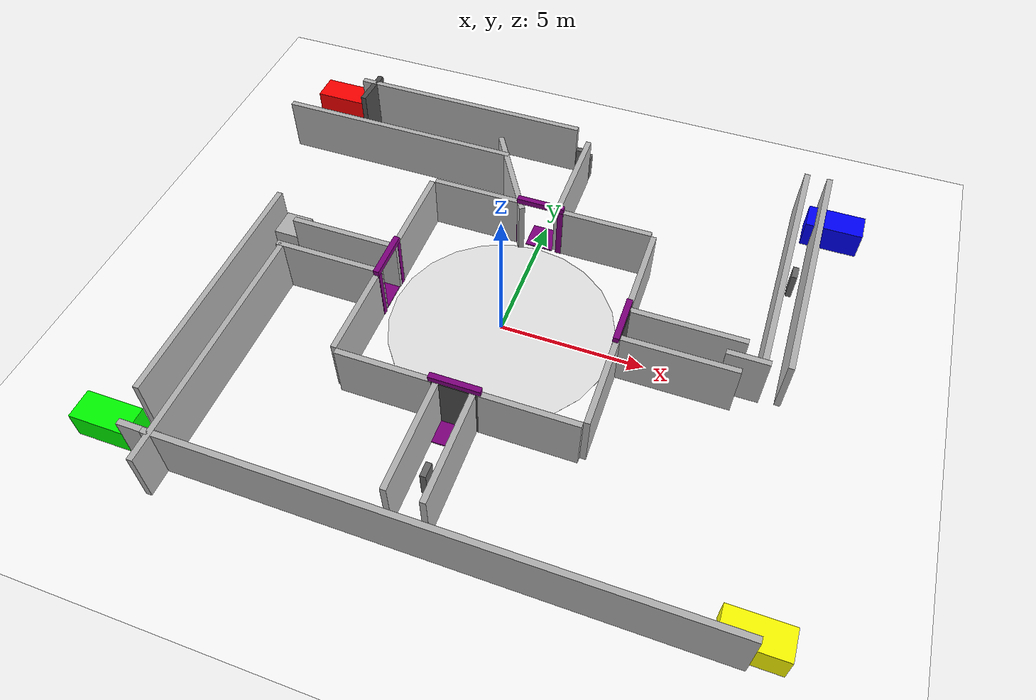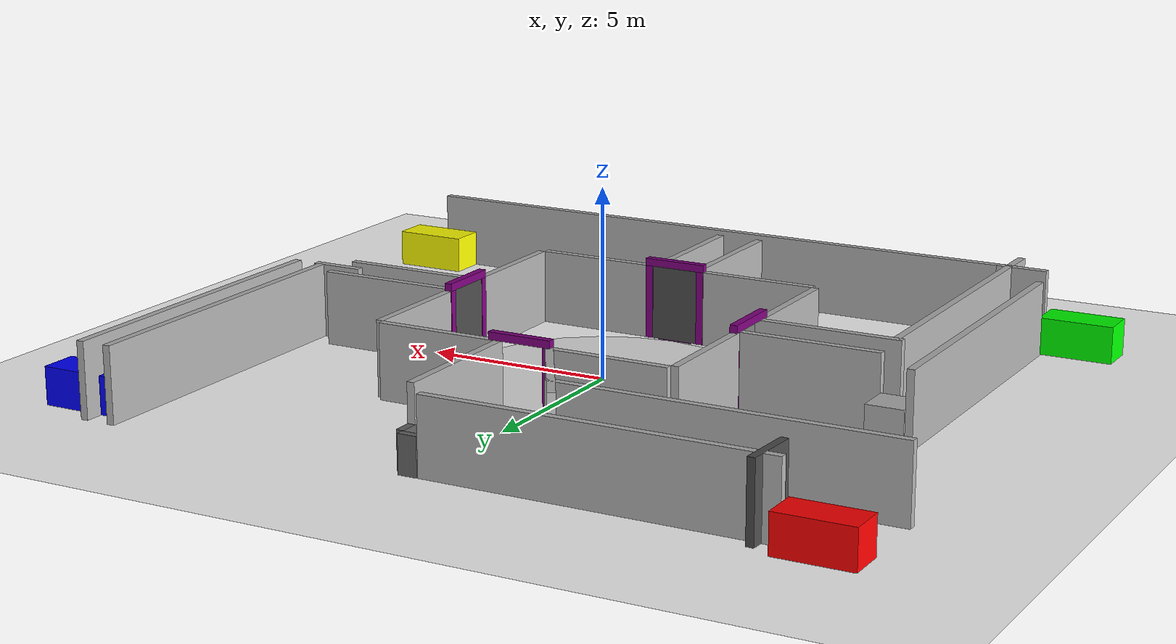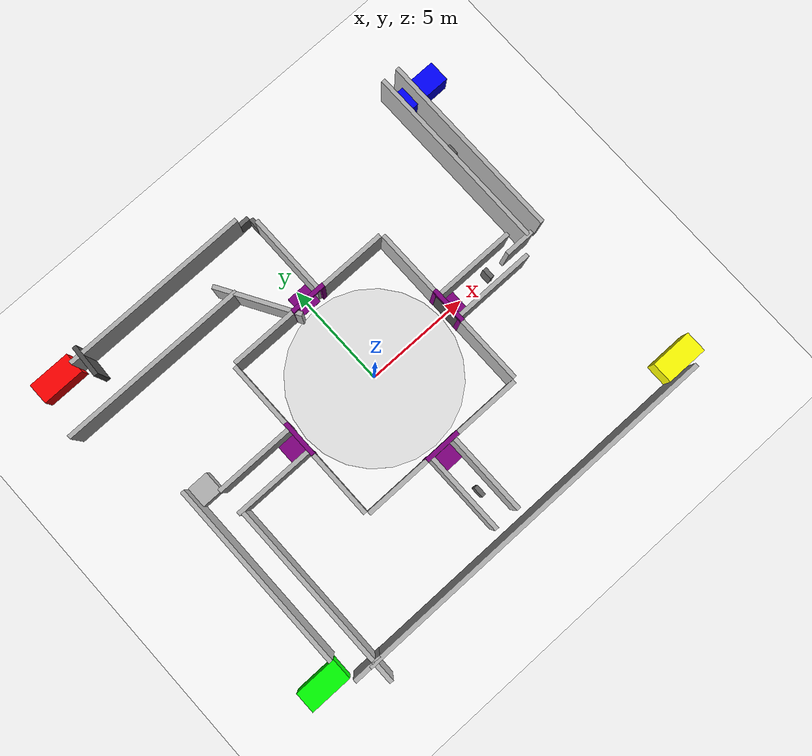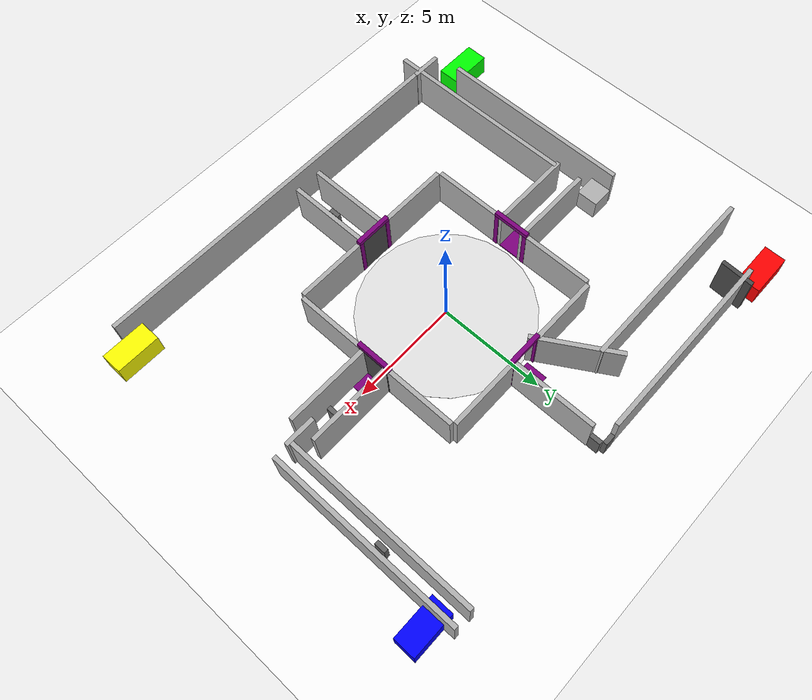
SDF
<sdf version="1.7">
 <world name="laberinto_v0_world">
  <model name="white_floor">
   <static>true</static>
   <link name="floor_link">
    <collision name="collision">
     <geometry><plane><normal>0 0 1</normal><size>40 40</size></plane></geometry>
    </collision>
    <visual name="visual">
     <geometry><plane><normal>0 0 1</normal><size>40 40</size></plane></geometry>
     <material>
      <ambient>1 1 1 1</ambient>
      <diffuse>1 1 1 1</diffuse>
      <specular>0.100000001 0.100000001 0.100000001 1</specular>
     </material>
    </visual>
    <inertial>
     <mass>1</mass>
     <inertia><ixx>1</ixx><ixy>0</ixy><ixz>0</ixz><iyy>1</iyy><iyz>0</iyz><izz>1</izz></inertia>
    </inertial>
   </link>
  </model>
  <model name="central_wall_north_left">
   <static>true</static>
   <pose>-2.375 4.0999999999999996 1 0 0 0</pose>
   <link name="link">
    <collision name="collision">
     <geometry><box><size>3.25 0.20000000000000001 2</size></box></geometry>
    </collision>
    <visual name="visual">
     <geometry><box><size>3.25 0.20000000000000001 2</size></box></geometry>
     <material>
      <ambient>0.699999988 0.699999988 0.699999988 1</ambient>
      <diffuse>0.699999988 0.699999988 0.699999988 1</diffuse>
     </material>
    </visual>
    <inertial>
     <mass>1</mass>
     <inertia><ixx>1</ixx><ixy>0</ixy><ixz>0</ixz><iyy>1</iyy><iyz>0</iyz><izz>1</izz></inertia>
    </inertial>
   </link>
  </model>
  <model name="central_wall_north_right">
   <static>true</static>
   <pose>2.375 4.0999999999999996 1 0 0 0</pose>
   <link name="link">
    <collision name="collision">
     <geometry><box><size>3.25 0.20000000000000001 2</size></box></geometry>
    </collision>
    <visual name="visual">
     <geometry><box><size>3.25 0.20000000000000001 2</size></box></geometry>
     <material>
      <ambient>0.699999988 0.699999988 0.699999988 1</ambient>
      <diffuse>0.699999988 0.699999988 0.699999988 1</diffuse>
     </material>
    </visual>
    <inertial>
     <mass>1</mass>
     <inertia><ixx>1</ixx><ixy>0</ixy><ixz>0</ixz><iyy>1</iyy><iyz>0</iyz><izz>1</izz></inertia>
    </inertial>
   </link>
  </model>
  <model name="central_wall_south_left">
   <static>true</static>
   <pose>-2.375 -4.0999999999999996 1 0 0 0</pose>
   <link name="link">
    <collision name="collision">
     <geometry><box><size>3.25 0.20000000000000001 2</size></box></geometry>
    </collision>
    <visual name="visual">
     <geometry><box><size>3.25 0.20000000000000001 2</size></box></geometry>
     <material>
      <ambient>0.699999988 0.699999988 0.699999988 1</ambient>
      <diffuse>0.699999988 0.699999988 0.699999988 1</diffuse>
     </material>
    </visual>
    <inertial>
     <mass>1</mass>
     <inertia><ixx>1</ixx><ixy>0</ixy><ixz>0</ixz><iyy>1</iyy><iyz>0</iyz><izz>1</izz></inertia>
    </inertial>
   </link>
  </model>
  <model name="central_wall_south_right">
   <static>true</static>
   <pose>2.375 -4.0999999999999996 1 0 0 0</pose>
   <link name="link">
    <collision name="collision">
     <geometry><box><size>3.25 0.20000000000000001 2</size></box></geometry>
    </collision>
    <visual name="visual">
     <geometry><box><size>3.25 0.20000000000000001 2</size></box></geometry>
     <material>
      <ambient>0.699999988 0.699999988 0.699999988 1</ambient>
      <diffuse>0.699999988 0.699999988 0.699999988 1</diffuse>
     </material>
    </visual>
    <inertial>
     <mass>1</mass>
     <inertia><ixx>1</ixx><ixy>0</ixy><ixz>0</ixz><iyy>1</iyy><iyz>0</iyz><izz>1</izz></inertia>
    </inertial>
   </link>
  </model>
  <model name="central_wall_east_bottom">
   <static>true</static>
   <pose>4.0999999999999996 -2.375 1 0 0 0</pose>
   <link name="link">
    <collision name="collision">
     <geometry><box><size>0.20000000000000001 3.25 2</size></box></geometry>
    </collision>
    <visual name="visual">
     <geometry><box><size>0.20000000000000001 3.25 2</size></box></geometry>
     <material>
      <ambient>0.699999988 0.699999988 0.699999988 1</ambient>
      <diffuse>0.699999988 0.699999988 0.699999988 1</diffuse>
     </material>
    </visual>
    <inertial>
     <mass>1</mass>
     <inertia><ixx>1</ixx><ixy>0</ixy><ixz>0</ixz><iyy>1</iyy><iyz>0</iyz><izz>1</izz></inertia>
    </inertial>
   </link>
  </model>
  <model name="central_wall_east_top">
   <static>true</static>
   <pose>4.0999999999999996 2.375 1 0 0 0</pose>
   <link name="link">
    <collision name="collision">
     <geometry><box><size>0.20000000000000001 3.25 2</size></box></geometry>
    </collision>
    <visual name="visual">
     <geometry><box><size>0.20000000000000001 3.25 2</size></box></geometry>
     <material>
      <ambient>0.699999988 0.699999988 0.699999988 1</ambient>
      <diffuse>0.699999988 0.699999988 0.699999988 1</diffuse>
     </material>
    </visual>
    <inertial>
     <mass>1</mass>
     <inertia><ixx>1</ixx><ixy>0</ixy><ixz>0</ixz><iyy>1</iyy><iyz>0</iyz><izz>1</izz></inertia>
    </inertial>
   </link>
  </model>
  <model name="central_wall_west_bottom">
   <static>true</static>
   <pose>-4.0999999999999996 -2.375 1 0 0 0</pose>
   <link name="link">
    <collision name="collision">
     <geometry><box><size>0.20000000000000001 3.25 2</size></box></geometry>
    </collision>
    <visual name="visual">
     <geometry><box><size>0.20000000000000001 3.25 2</size></box></geometry>
     <material>
      <ambient>0.699999988 0.699999988 0.699999988 1</ambient>
      <diffuse>0.699999988 0.699999988 0.699999988 1</diffuse>
     </material>
    </visual>
    <inertial>
     <mass>1</mass>
     <inertia><ixx>1</ixx><ixy>0</ixy><ixz>0</ixz><iyy>1</iyy><iyz>0</iyz><izz>1</izz></inertia>
    </inertial>
   </link>
  </model>
  <model name="central_wall_west_top">
   <static>true</static>
   <pose>-4.0999999999999996 2.375 1 0 0 0</pose>
   <link name="link">
    <collision name="collision">
     <geometry><box><size>0.20000000000000001 3.25 2</size></box></geometry>
    </collision>
    <visual name="visual">
     <geometry><box><size>0.20000000000000001 3.25 2</size></box></geometry>
     <material>
      <ambient>0.699999988 0.699999988 0.699999988 1</ambient>
      <diffuse>0.699999988 0.699999988 0.699999988 1</diffuse>
     </material>
    </visual>
    <inertial>
     <mass>1</mass>
     <inertia><ixx>1</ixx><ixy>0</ixy><ixz>0</ixz><iyy>1</iyy><iyz>0</iyz><izz>1</izz></inertia>
    </inertial>
   </link>
  </model>
  <model name="door_north">
   <static>true</static>
   <pose>-8.4864425659179688 8.2776279449462891 1 0 0 3.0887099978927126</pose>
   <link name="link">
    <collision name="collision"><geometry><box><size>0.20000000000000001 1.5 2</size></box></geometry></collision>
    <visual name="visual">
     <geometry><box><size>0.20000000000000001 1.5 2</size></box></geometry>
     <material>
      <ambient>0.300000012 0.300000012 0.300000012 1</ambient>
      <diffuse>0.300000012 0.300000012 0.300000012 1</diffuse>
     </material>
    </visual>
    <inertial>
     <mass>1</mass>
     <inertia><ixx>1</ixx><ixy>0</ixy><ixz>0</ixz><iyy>1</iyy><iyz>0</iyz><izz>1</izz></inertia>
    </inertial>
   </link>
  </model>
  <model name="door_south">
   <static>true</static>
   <pose>0 -4.0999999046325684 1 0 0 1.5739049109720806</pose>
   <link name="link">
    <collision name="collision"><geometry><box><size>0.20000000000000001 1.5 2</size></box></geometry></collision>
    <visual name="visual">
     <geometry><box><size>0.20000000000000001 1.5 2</size></box></geometry>
     <material>
      <ambient>0.300000012 0.300000012 0.300000012 1</ambient>
      <diffuse>0.300000012 0.300000012 0.300000012 1</diffuse>
     </material>
    </visual>
    <inertial>
     <mass>1</mass>
     <inertia><ixx>1</ixx><ixy>0</ixy><ixz>0</ixz><iyy>1</iyy><iyz>0</iyz><izz>1</izz></inertia>
    </inertial>
   </link>
  </model>
  <model name="door_east">
   <static>true</static>
   <pose>4.0999999046325684 0 1 0 0 -0.011448291346638816</pose>
   <link name="link">
    <collision name="collision"><geometry><box><size>0.20000000000000001 1.5 2</size></box></geometry></collision>
    <visual name="visual">
     <geometry><box><size>0.20000000000000001 1.5 2</size></box></geometry>
     <material>
      <ambient>0.300000012 0.300000012 0.300000012 1</ambient>
      <diffuse>0.300000012 0.300000012 0.300000012 1</diffuse>
     </material>
    </visual>
    <inertial>
     <mass>1</mass>
     <inertia><ixx>1</ixx><ixy>0</ixy><ixz>0</ixz><iyy>1</iyy><iyz>0</iyz><izz>1</izz></inertia>
    </inertial>
   </link>
  </model>
  <model name="central_room_floor_visual">
   <static>true</static>
   <pose>0 0 0.01 0 0 0</pose>
   <link name="link">
    <visual name="visual">
     <geometry><cylinder><radius>3.8999999999999999</radius><length>0.01</length></cylinder></geometry>
     <material>
      <ambient>0.899999976 0.899999976 0.899999976 1</ambient>
      <diffuse>0.899999976 0.899999976 0.899999976 1</diffuse>
     </material>
    </visual>
    <inertial>
     <mass>1</mass>
     <inertia><ixx>1</ixx><ixy>0</ixy><ixz>0</ixz><iyy>1</iyy><iyz>0</iyz><izz>1</izz></inertia>
    </inertial>
   </link>
  </model>
  <model name="purple_carpet_north">
   <static>true</static>
   <pose>0 4.5239000000000003 -0.0097000000000000003 0 0 0</pose>
   <link name="link">
    <collision name="collision"><geometry><box><size>1 1 0.050000000000000003</size></box></geometry></collision>
    <visual name="visual">
     <geometry><box><size>1 1 0.050000000000000003</size></box></geometry>
     <material><ambient>0.5 0 0.5 1</ambient><diffuse>0.5 0 0.5 1</diffuse></material>
    </visual>
    <inertial>
     <mass>1</mass>
     <inertia><ixx>1</ixx><ixy>0</ixy><ixz>0</ixz><iyy>1</iyy><iyz>0</iyz><izz>1</izz></inertia>
    </inertial>
   </link>
  </model>
  <model name="purple_carpet_south">
   <static>true</static>
   <pose>0 -4.5239000000000003 -0.0097000000000000003 0 0 0</pose>
   <link name="link">
    <collision name="collision"><geometry><box><size>1 1 0.050000000000000003</size></box></geometry></collision>
    <visual name="visual">
     <geometry><box><size>1 1 0.050000000000000003</size></box></geometry>
     <material><ambient>0.5 0 0.5 1</ambient><diffuse>0.5 0 0.5 1</diffuse></material>
    </visual>
    <inertial>
     <mass>1</mass>
     <inertia><ixx>1</ixx><ixy>0</ixy><ixz>0</ixz><iyy>1</iyy><iyz>0</iyz><izz>1</izz></inertia>
    </inertial>
   </link>
  </model>
  <model name="purple_carpet_east">
   <static>true</static>
   <pose>4.5239000000000003 0 -0.0097000000000000003 0 0 0</pose>
   <link name="link">
    <collision name="collision"><geometry><box><size>1 1 0.050000000000000003</size></box></geometry></collision>
    <visual name="visual">
     <geometry><box><size>1 1 0.050000000000000003</size></box></geometry>
     <material><ambient>0.5 0 0.5 1</ambient><diffuse>0.5 0 0.5 1</diffuse></material>
    </visual>
    <inertial>
     <mass>1</mass>
     <inertia><ixx>1</ixx><ixy>0</ixy><ixz>0</ixz><iyy>1</iyy><iyz>0</iyz><izz>1</izz></inertia>
    </inertial>
   </link>
  </model>
  <model name="purple_carpet_west">
   <static>true</static>
   <pose>-4.5239000000000003 0 -0.0097000000000000003 0 0 0</pose>
   <link name="link">
    <collision name="collision"><geometry><box><size>1 1 0.050000000000000003</size></box></geometry></collision>
    <visual name="visual">
     <geometry><box><size>1 1 0.050000000000000003</size></box></geometry>
     <material><ambient>0.5 0 0.5 1</ambient><diffuse>0.5 0 0.5 1</diffuse></material>
    </visual>
    <inertial>
     <mass>1</mass>
     <inertia><ixx>1</ixx><ixy>0</ixy><ixz>0</ixz><iyy>1</iyy><iyz>0</iyz><izz>1</izz></inertia>
    </inertial>
   </link>
  </model>
  <model name="roman_arch_north">
   <static>true</static>
   <pose>0 4.0841000000000003 0 0 0 0</pose>
   <link name="pillar_left">
    <pose>-0.75 0 1 0 0 0</pose>
    <collision name="collision">
     <geometry><box><size>0.20000000000000001 0.20000000000000001 2</size></box></geometry>
    </collision>
    <visual name="visual">
     <geometry><box><size>0.20000000000000001 0.20000000000000001 2</size></box></geometry>
     <material><ambient>0.5 0 0.5 1</ambient><diffuse>0.5 0 0.5 1</diffuse></material>
    </visual>
    <inertial>
     <mass>1</mass>
     <inertia><ixx>1</ixx><ixy>0</ixy><ixz>0</ixz><iyy>1</iyy><iyz>0</iyz><izz>1</izz></inertia>
    </inertial>
   </link>
   <link name="pillar_right">
    <pose>0.75 0 1 0 0 0</pose>
    <collision name="collision">
     <geometry><box><size>0.20000000000000001 0.20000000000000001 2</size></box></geometry>
    </collision>
    <visual name="visual">
     <geometry><box><size>0.20000000000000001 0.20000000000000001 2</size></box></geometry>
     <material><ambient>0.5 0 0.5 1</ambient><diffuse>0.5 0 0.5 1</diffuse></material>
    </visual>
    <inertial>
     <mass>1</mass>
     <inertia><ixx>1</ixx><ixy>0</ixy><ixz>0</ixz><iyy>1</iyy><iyz>0</iyz><izz>1</izz></inertia>
    </inertial>
   </link>
   <link name="arch_top">
    <pose>0 0 2.1000000000000001 0 0 0</pose>
    <collision name="collision">
     <geometry><box><size>1.7 0.20000000000000001 0.20000000000000001</size></box></geometry>
    </collision>
    <visual name="visual">
     <geometry><box><size>1.7 0.20000000000000001 0.20000000000000001</size></box></geometry>
     <material><ambient>0.5 0 0.5 1</ambient><diffuse>0.5 0 0.5 1</diffuse></material>
    </visual>
    <inertial>
     <mass>1</mass>
     <inertia><ixx>1</ixx><ixy>0</ixy><ixz>0</ixz><iyy>1</iyy><iyz>0</iyz><izz>1</izz></inertia>
    </inertial>
   </link>
  </model>
  <model name="roman_arch_south">
   <static>true</static>
   <pose>0 -4.0841000000000003 0 0 0 0</pose>
   <link name="pillar_left">
    <pose>-0.75 0 1 0 0 0</pose>
    <collision name="collision">
     <geometry><box><size>0.20000000000000001 0.20000000000000001 2</size></box></geometry>
    </collision>
    <visual name="visual">
     <geometry><box><size>0.20000000000000001 0.20000000000000001 2</size></box></geometry>
     <material><ambient>0.5 0 0.5 1</ambient><diffuse>0.5 0 0.5 1</diffuse></material>
    </visual>
    <inertial>
     <mass>1</mass>
     <inertia><ixx>1</ixx><ixy>0</ixy><ixz>0</ixz><iyy>1</iyy><iyz>0</iyz><izz>1</izz></inertia>
    </inertial>
   </link>
   <link name="pillar_right">
    <pose>0.75 0 1 0 0 0</pose>
    <collision name="collision">
     <geometry><box><size>0.20000000000000001 0.20000000000000001 2</size></box></geometry>
    </collision>
    <visual name="visual">
     <geometry><box><size>0.20000000000000001 0.20000000000000001 2</size></box></geometry>
     <material><ambient>0.5 0 0.5 1</ambient><diffuse>0.5 0 0.5 1</diffuse></material>
    </visual>
    <inertial>
     <mass>1</mass>
     <inertia><ixx>1</ixx><ixy>0</ixy><ixz>0</ixz><iyy>1</iyy><iyz>0</iyz><izz>1</izz></inertia>
    </inertial>
   </link>
   <link name="arch_top">
    <pose>0 0 2.1000000000000001 0 0 0</pose>
    <collision name="collision">
     <geometry><box><size>1.7 0.20000000000000001 0.20000000000000001</size></box></geometry>
    </collision>
    <visual name="visual">
     <geometry><box><size>1.7 0.20000000000000001 0.20000000000000001</size></box></geometry>
     <material><ambient>0.5 0 0.5 1</ambient><diffuse>0.5 0 0.5 1</diffuse></material>
    </visual>
    <inertial>
     <mass>1</mass>
     <inertia><ixx>1</ixx><ixy>0</ixy><ixz>0</ixz><iyy>1</iyy><iyz>0</iyz><izz>1</izz></inertia>
    </inertial>
   </link>
  </model>
  <model name="roman_arch_east">
   <static>true</static>
   <pose>4.0841000000000003 -1.1102230246251565e-16 0 0 0 1.5708000000000006</pose>
   <link name="pillar_left">
    <pose>-0.75 0 1 0 0 0</pose>
    <collision name="collision">
     <geometry><box><size>0.20000000000000001 0.20000000000000001 2</size></box></geometry>
    </collision>
    <visual name="visual">
     <geometry><box><size>0.20000000000000001 0.20000000000000001 2</size></box></geometry>
     <material><ambient>0.5 0 0.5 1</ambient><diffuse>0.5 0 0.5 1</diffuse></material>
    </visual>
    <inertial>
     <mass>1</mass>
     <inertia><ixx>1</ixx><ixy>0</ixy><ixz>0</ixz><iyy>1</iyy><iyz>0</iyz><izz>1</izz></inertia>
    </inertial>
   </link>
   <link name="pillar_right">
    <pose>0.74999999999999978 0 1 0 0 0</pose>
    <collision name="collision">
     <geometry><box><size>0.20000000000000001 0.20000000000000001 2</size></box></geometry>
    </collision>
    <visual name="visual">
     <geometry><box><size>0.20000000000000001 0.20000000000000001 2</size></box></geometry>
     <material><ambient>0.5 0 0.5 1</ambient><diffuse>0.5 0 0.5 1</diffuse></material>
    </visual>
    <inertial>
     <mass>1</mass>
     <inertia><ixx>1</ixx><ixy>0</ixy><ixz>0</ixz><iyy>1</iyy><iyz>0</iyz><izz>1</izz></inertia>
    </inertial>
   </link>
   <link name="arch_top">
    <pose>0 0 2.1000000000000005 0 0 0</pose>
    <collision name="collision">
     <geometry><box><size>1.7 0.20000000000000001 0.20000000000000001</size></box></geometry>
    </collision>
    <visual name="visual">
     <geometry><box><size>1.7 0.20000000000000001 0.20000000000000001</size></box></geometry>
     <material><ambient>0.5 0 0.5 1</ambient><diffuse>0.5 0 0.5 1</diffuse></material>
    </visual>
    <inertial>
     <mass>1</mass>
     <inertia><ixx>1</ixx><ixy>0</ixy><ixz>0</ixz><iyy>1</iyy><iyz>0</iyz><izz>1</izz></inertia>
    </inertial>
   </link>
  </model>
  <model name="roman_arch_west">
   <static>true</static>
   <pose>-4.0841000000000003 -1.1102230246251565e-16 0 0 0 1.5708000000000006</pose>
   <link name="pillar_left">
    <pose>-0.75 0 1 0 0 0</pose>
    <collision name="collision">
     <geometry><box><size>0.20000000000000001 0.20000000000000001 2</size></box></geometry>
    </collision>
    <visual name="visual">
     <geometry><box><size>0.20000000000000001 0.20000000000000001 2</size></box></geometry>
     <material><ambient>0.5 0 0.5 1</ambient><diffuse>0.5 0 0.5 1</diffuse></material>
    </visual>
    <inertial>
     <mass>1</mass>
     <inertia><ixx>1</ixx><ixy>0</ixy><ixz>0</ixz><iyy>1</iyy><iyz>0</iyz><izz>1</izz></inertia>
    </inertial>
   </link>
   <link name="pillar_right">
    <pose>0.75000000000000044 0 1 0 0 0</pose>
    <collision name="collision">
     <geometry><box><size>0.20000000000000001 0.20000000000000001 2</size></box></geometry>
    </collision>
    <visual name="visual">
     <geometry><box><size>0.20000000000000001 0.20000000000000001 2</size></box></geometry>
     <material><ambient>0.5 0 0.5 1</ambient><diffuse>0.5 0 0.5 1</diffuse></material>
    </visual>
    <inertial>
     <mass>1</mass>
     <inertia><ixx>1</ixx><ixy>0</ixy><ixz>0</ixz><iyy>1</iyy><iyz>0</iyz><izz>1</izz></inertia>
    </inertial>
   </link>
   <link name="arch_top">
    <pose>0 0 2.1000000000000005 0 0 0</pose>
    <collision name="collision">
     <geometry><box><size>1.7 0.20000000000000001 0.20000000000000001</size></box></geometry>
    </collision>
    <visual name="visual">
     <geometry><box><size>1.7 0.20000000000000001 0.20000000000000001</size></box></geometry>
     <material><ambient>0.5 0 0.5 1</ambient><diffuse>0.5 0 0.5 1</diffuse></material>
    </visual>
    <inertial>
     <mass>1</mass>
     <inertia><ixx>1</ixx><ixy>0</ixy><ixz>0</ixz><iyy>1</iyy><iyz>0</iyz><izz>1</izz></inertia>
    </inertial>
   </link>
  </model>
  <model name="hall_N_seg1_wall_W">
   <static>true</static>
   <pose>-1.5972205400466919 5.4570412635803223 1 0 0 0.53644798287660367</pose>
   <link name="link">
    <collision name="collision">
     <geometry><box><size>0.20000000000000001 3.8999999999999999 2</size></box></geometry>
    </collision>
    <visual name="visual">
     <geometry><box><size>0.20000000000000001 3.8999999999999999 2</size></box></geometry>
     <material>
      <ambient>0.699999988 0.699999988 0.699999988 1</ambient>
      <diffuse>0.699999988 0.699999988 0.699999988 1</diffuse>
     </material>
    </visual>
    <inertial>
     <mass>1</mass>
     <inertia><ixx>1</ixx><ixy>0</ixy><ixz>0</ixz><iyy>1</iyy><iyz>0</iyz><izz>1</izz></inertia>
    </inertial>
   </link>
  </model>
  <model name="hall_N_seg1_wall_E">
   <static>true</static>
   <pose>0.59999999999999998 6.0499999999999998 1 0 0 0</pose>
   <link name="link">
    <collision name="collision">
     <geometry><box><size>0.20000000000000001 3.8999999999999999 2</size></box></geometry>
    </collision>
    <visual name="visual">
     <geometry><box><size>0.20000000000000001 3.8999999999999999 2</size></box></geometry>
     <material>
      <ambient>0.699999988 0.699999988 0.699999988 1</ambient>
      <diffuse>0.699999988 0.699999988 0.699999988 1</diffuse>
     </material>
    </visual>
    <inertial>
     <mass>1</mass>
     <inertia><ixx>1</ixx><ixy>0</ixy><ixz>0</ixz><iyy>1</iyy><iyz>0</iyz><izz>1</izz></inertia>
    </inertial>
   </link>
  </model>
  <model name="hall_N_obs1">
   <static>true</static>
   <pose>0.5843803882598877 8.2460498809814453 0.5 0 0 0</pose>
   <link name="link">
    <collision name="collision"><geometry><box><size>0.20000000000000001 0.5 1</size></box></geometry></collision>
    <visual name="visual">
     <geometry><box><size>0.20000000000000001 0.5 1</size></box></geometry>
     <material>
      <ambient>0.400000006 0.400000006 0.400000006 1</ambient>
      <diffuse>0.400000006 0.400000006 0.400000006 1</diffuse>
     </material>
    </visual>
    <inertial>
     <mass>1</mass>
     <inertia><ixx>1</ixx><ixy>0</ixy><ixz>0</ixz><iyy>1</iyy><iyz>0</iyz><izz>1</izz></inertia>
    </inertial>
   </link>
  </model>
  <model name="hall_N_seg2_wall_N">
   <static>true</static>
   <pose>-4.5 8.5999999999999996 1 0 0 0</pose>
   <link name="link">
    <collision name="collision"><geometry><box><size>9 0.20000000000000001 2</size></box></geometry></collision>
    <visual name="visual">
     <geometry><box><size>9 0.20000000000000001 2</size></box></geometry>
     <material>
      <ambient>0.699999988 0.699999988 0.699999988 1</ambient>
      <diffuse>0.699999988 0.699999988 0.699999988 1</diffuse>
     </material>
    </visual>
    <inertial>
     <mass>1</mass>
     <inertia><ixx>1</ixx><ixy>0</ixy><ixz>0</ixz><iyy>1</iyy><iyz>0</iyz><izz>1</izz></inertia>
    </inertial>
   </link>
  </model>
  <model name="hall_N_seg2_wall_S">
   <static>true</static>
   <pose>-6.4975638389587402 6.3150901794433594 1 0 0 0</pose>
   <link name="link">
    <collision name="collision"><geometry><box><size>9 0.20000000000000001 2</size></box></geometry></collision>
    <visual name="visual">
     <geometry><box><size>9 0.20000000000000001 2</size></box></geometry>
     <material>
      <ambient>0.699999988 0.699999988 0.699999988 1</ambient>
      <diffuse>0.699999988 0.699999988 0.699999988 1</diffuse>
     </material>
    </visual>
    <inertial>
     <mass>1</mass>
     <inertia><ixx>1</ixx><ixy>0</ixy><ixz>0</ixz><iyy>1</iyy><iyz>0</iyz><izz>1</izz></inertia>
    </inertial>
   </link>
  </model>
  <model name="hall_N_obs2">
   <static>true</static>
   <pose>0.26535564661026001 8.6158599853515625 0.5 0 0 0</pose>
   <link name="link">
    <collision name="collision"><geometry><box><size>0.5 0.20000000000000001 1</size></box></geometry></collision>
    <visual name="visual">
     <geometry><box><size>0.5 0.20000000000000001 1</size></box></geometry>
     <material>
      <ambient>0.400000006 0.400000006 0.400000006 1</ambient>
      <diffuse>0.400000006 0.400000006 0.400000006 1</diffuse>
     </material>
    </visual>
    <inertial>
     <mass>1</mass>
     <inertia><ixx>1</ixx><ixy>0</ixy><ixz>0</ixz><iyy>1</iyy><iyz>0</iyz><izz>1</izz></inertia>
    </inertial>
   </link>
  </model>
  <model name="hall_E_seg1_wall_S">
   <static>true</static>
   <pose>6.0499999999999998 -0.59999999999999998 1 0 0 0</pose>
   <link name="link">
    <collision name="collision">
     <geometry><box><size>3.8999999999999999 0.20000000000000001 2</size></box></geometry>
    </collision>
    <visual name="visual">
     <geometry><box><size>3.8999999999999999 0.20000000000000001 2</size></box></geometry>
     <material>
      <ambient>0.699999988 0.699999988 0.699999988 1</ambient>
      <diffuse>0.699999988 0.699999988 0.699999988 1</diffuse>
     </material>
    </visual>
    <inertial>
     <mass>1</mass>
     <inertia><ixx>1</ixx><ixy>0</ixy><ixz>0</ixz><iyy>1</iyy><iyz>0</iyz><izz>1</izz></inertia>
    </inertial>
   </link>
  </model>
  <model name="hall_E_seg1_wall_N">
   <static>true</static>
   <pose>6.0499999999999998 0.59999999999999998 1 0 0 0</pose>
   <link name="link">
    <collision name="collision">
     <geometry><box><size>3.8999999999999999 0.20000000000000001 2</size></box></geometry>
    </collision>
    <visual name="visual">
     <geometry><box><size>3.8999999999999999 0.20000000000000001 2</size></box></geometry>
     <material>
      <ambient>0.699999988 0.699999988 0.699999988 1</ambient>
      <diffuse>0.699999988 0.699999988 0.699999988 1</diffuse>
     </material>
    </visual>
    <inertial>
     <mass>1</mass>
     <inertia><ixx>1</ixx><ixy>0</ixy><ixz>0</ixz><iyy>1</iyy><iyz>0</iyz><izz>1</izz></inertia>
    </inertial>
   </link>
  </model>
  <model name="hall_E_obs1">
   <static>true</static>
   <pose>6.5 0 0.5 0 0 1.5708000000000011</pose>
   <link name="link">
    <collision name="collision"><geometry><box><size>0.5 0.20000000000000001 1</size></box></geometry></collision>
    <visual name="visual">
     <geometry><box><size>0.5 0.20000000000000001 1</size></box></geometry>
     <material>
      <ambient>0.400000006 0.400000006 0.400000006 1</ambient>
      <diffuse>0.400000006 0.400000006 0.400000006 1</diffuse>
     </material>
    </visual>
    <inertial>
     <mass>1</mass>
     <inertia><ixx>1</ixx><ixy>0</ixy><ixz>0</ixz><iyy>1</iyy><iyz>0</iyz><izz>1</izz></inertia>
    </inertial>
   </link>
  </model>
  <model name="hall_E_turn_wall_E">
   <static>true</static>
   <pose>8.0999999999999996 0 1 0 0 1.5708000000000011</pose>
   <link name="link">
    <collision name="collision">
     <geometry><box><size>0.20000000000000001 1.3999999999999999 2</size></box></geometry>
    </collision>
    <visual name="visual">
     <geometry><box><size>0.20000000000000001 1.3999999999999999 2</size></box></geometry>
     <material>
      <ambient>0.699999988 0.699999988 0.699999988 1</ambient>
      <diffuse>0.699999988 0.699999988 0.699999988 1</diffuse>
     </material>
    </visual>
    <inertial>
     <mass>1</mass>
     <inertia><ixx>1</ixx><ixy>0</ixy><ixz>0</ixz><iyy>1</iyy><iyz>0</iyz><izz>1</izz></inertia>
    </inertial>
   </link>
  </model>
  <model name="hall_E_seg2_wall_W">
   <static>true</static>
   <pose>8.5999999999999996 4.5 1 0 0 0</pose>
   <link name="link">
    <collision name="collision"><geometry><box><size>0.20000000000000001 9 2</size></box></geometry></collision>
    <visual name="visual">
     <geometry><box><size>0.20000000000000001 9 2</size></box></geometry>
     <material>
      <ambient>0.699999988 0.699999988 0.699999988 1</ambient>
      <diffuse>0.699999988 0.699999988 0.699999988 1</diffuse>
     </material>
    </visual>
    <inertial>
     <mass>1</mass>
     <inertia><ixx>1</ixx><ixy>0</ixy><ixz>0</ixz><iyy>1</iyy><iyz>0</iyz><izz>1</izz></inertia>
    </inertial>
   </link>
  </model>
  <model name="hall_E_seg2_wall_E">
   <static>true</static>
   <pose>9.4000000000000004 4.5 1 0 0 0</pose>
   <link name="link">
    <collision name="collision"><geometry><box><size>0.20000000000000001 9 2</size></box></geometry></collision>
    <visual name="visual">
     <geometry><box><size>0.20000000000000001 9 2</size></box></geometry>
     <material>
      <ambient>0.699999988 0.699999988 0.699999988 1</ambient>
      <diffuse>0.699999988 0.699999988 0.699999988 1</diffuse>
     </material>
    </visual>
    <inertial>
     <mass>1</mass>
     <inertia><ixx>1</ixx><ixy>0</ixy><ixz>0</ixz><iyy>1</iyy><iyz>0</iyz><izz>1</izz></inertia>
    </inertial>
   </link>
  </model>
  <model name="hall_E_obs2">
   <static>true</static>
   <pose>9 5 0.5 0 0 1.5708000000000011</pose>
   <link name="link">
    <collision name="collision"><geometry><box><size>0.5 0.20000000000000001 1</size></box></geometry></collision>
    <visual name="visual">
     <geometry><box><size>0.5 0.20000000000000001 1</size></box></geometry>
     <material>
      <ambient>0.400000006 0.400000006 0.400000006 1</ambient>
      <diffuse>0.400000006 0.400000006 0.400000006 1</diffuse>
     </material>
    </visual>
    <inertial>
     <mass>1</mass>
     <inertia><ixx>1</ixx><ixy>0</ixy><ixz>0</ixz><iyy>1</iyy><iyz>0</iyz><izz>1</izz></inertia>
    </inertial>
   </link>
  </model>
  <model name="hall_S_seg1_wall_W">
   <static>true</static>
   <pose>-0.59999999999999998 -6.0499999999999998 1 0 0 0</pose>
   <link name="link">
    <collision name="collision">
     <geometry><box><size>0.20000000000000001 3.8999999999999999 2</size></box></geometry>
    </collision>
    <visual name="visual">
     <geometry><box><size>0.20000000000000001 3.8999999999999999 2</size></box></geometry>
     <material>
      <ambient>0.699999988 0.699999988 0.699999988 1</ambient>
      <diffuse>0.699999988 0.699999988 0.699999988 1</diffuse>
     </material>
    </visual>
    <inertial>
     <mass>1</mass>
     <inertia><ixx>1</ixx><ixy>0</ixy><ixz>0</ixz><iyy>1</iyy><iyz>0</iyz><izz>1</izz></inertia>
    </inertial>
   </link>
  </model>
  <model name="hall_S_seg1_wall_E">
   <static>true</static>
   <pose>0.59999999999999998 -6.0499999999999998 1 0 0 0</pose>
   <link name="link">
    <collision name="collision">
     <geometry><box><size>0.20000000000000001 3.8999999999999999 2</size></box></geometry>
    </collision>
    <visual name="visual">
     <geometry><box><size>0.20000000000000001 3.8999999999999999 2</size></box></geometry>
     <material>
      <ambient>0.699999988 0.699999988 0.699999988 1</ambient>
      <diffuse>0.699999988 0.699999988 0.699999988 1</diffuse>
     </material>
    </visual>
    <inertial>
     <mass>1</mass>
     <inertia><ixx>1</ixx><ixy>0</ixy><ixz>0</ixz><iyy>1</iyy><iyz>0</iyz><izz>1</izz></inertia>
    </inertial>
   </link>
  </model>
  <model name="hall_S_obs1">
   <static>true</static>
   <pose>0 -6.5 0.5 0 0 0</pose>
   <link name="link">
    <collision name="collision"><geometry><box><size>0.20000000000000001 0.5 1</size></box></geometry></collision>
    <visual name="visual">
     <geometry><box><size>0.20000000000000001 0.5 1</size></box></geometry>
     <material>
      <ambient>0.400000006 0.400000006 0.400000006 1</ambient>
      <diffuse>0.400000006 0.400000006 0.400000006 1</diffuse>
     </material>
    </visual>
    <inertial>
     <mass>1</mass>
     <inertia><ixx>1</ixx><ixy>0</ixy><ixz>0</ixz><iyy>1</iyy><iyz>0</iyz><izz>1</izz></inertia>
    </inertial>
   </link>
  </model>
  <model name="hall_W_seg1_wall_S">
   <static>true</static>
   <pose>-5.9732098579406738 -0.60000002384185791 1 0 0 0</pose>
   <link name="link">
    <collision name="collision">
     <geometry><box><size>3.8999999999999999 0.20000000000000001 2</size></box></geometry>
    </collision>
    <visual name="visual">
     <geometry><box><size>3.8999999999999999 0.20000000000000001 2</size></box></geometry>
     <material>
      <ambient>0.699999988 0.699999988 0.699999988 1</ambient>
      <diffuse>0.699999988 0.699999988 0.699999988 1</diffuse>
     </material>
    </visual>
    <inertial>
     <mass>1</mass>
     <inertia><ixx>1</ixx><ixy>0</ixy><ixz>0</ixz><iyy>1</iyy><iyz>0</iyz><izz>1</izz></inertia>
    </inertial>
   </link>
  </model>
  <model name="hall_W_seg1_wall_N">
   <static>true</static>
   <pose>-5.9408130645751953 0.60000002384185791 1 0 0 0</pose>
   <link name="link">
    <collision name="collision">
     <geometry><box><size>3.8999999999999999 0.20000000000000001 2</size></box></geometry>
    </collision>
    <visual name="visual">
     <geometry><box><size>3.8999999999999999 0.20000000000000001 2</size></box></geometry>
     <material>
      <ambient>0.699999988 0.699999988 0.699999988 1</ambient>
      <diffuse>0.699999988 0.699999988 0.699999988 1</diffuse>
     </material>
    </visual>
    <inertial>
     <mass>1</mass>
     <inertia><ixx>1</ixx><ixy>0</ixy><ixz>0</ixz><iyy>1</iyy><iyz>0</iyz><izz>1</izz></inertia>
    </inertial>
   </link>
  </model>
  <model name="hall_W_turn_wall_W">
   <static>true</static>
   <pose>-8.0999689102172852 -8.5878210067749023 1 0 0 1.5708000357176291</pose>
   <link name="link">
    <collision name="collision">
     <geometry><box><size>0.20000000000000001 1.3999999999999999 2</size></box></geometry>
    </collision>
    <visual name="visual">
     <geometry><box><size>0.20000000000000001 1.3999999999999999 2</size></box></geometry>
     <material>
      <ambient>0.699999988 0.699999988 0.699999988 1</ambient>
      <diffuse>0.699999988 0.699999988 0.699999988 1</diffuse>
     </material>
    </visual>
    <inertial>
     <mass>1</mass>
     <inertia><ixx>1</ixx><ixy>0</ixy><ixz>0</ixz><iyy>1</iyy><iyz>0</iyz><izz>1</izz></inertia>
    </inertial>
   </link>
  </model>
  <model name="hall_W_seg2_wall_W">
   <static>true</static>
   <pose>-8.9993667602539062 -2.9001901149749756 1 0 0 0</pose>
   <link name="link">
    <collision name="collision"><geometry><box><size>0.20000000000000001 9 2</size></box></geometry></collision>
    <visual name="visual">
     <geometry><box><size>0.20000000000000001 9 2</size></box></geometry>
     <material>
      <ambient>0.699999988 0.699999988 0.699999988 1</ambient>
      <diffuse>0.699999988 0.699999988 0.699999988 1</diffuse>
     </material>
    </visual>
    <inertial>
     <mass>1</mass>
     <inertia><ixx>1</ixx><ixy>0</ixy><ixz>0</ixz><iyy>1</iyy><iyz>0</iyz><izz>1</izz></inertia>
    </inertial>
   </link>
  </model>
  <model name="hall_W_seg2_wall_E">
   <static>true</static>
   <pose>-7.7313275337219238 -5.0895299911499023 1 0 0 0</pose>
   <link name="link">
    <collision name="collision"><geometry><box><size>0.20000000000000001 9 2</size></box></geometry></collision>
    <visual name="visual">
     <geometry><box><size>0.20000000000000001 9 2</size></box></geometry>
     <material>
      <ambient>0.699999988 0.699999988 0.699999988 1</ambient>
      <diffuse>0.699999988 0.699999988 0.699999988 1</diffuse>
     </material>
    </visual>
    <inertial>
     <mass>1</mass>
     <inertia><ixx>1</ixx><ixy>0</ixy><ixz>0</ixz><iyy>1</iyy><iyz>0</iyz><izz>1</izz></inertia>
    </inertial>
   </link>
  </model>
  <model name="hall_W_seg3_wall_S">
   <static>true</static>
   <pose>1 -8.5999999999999996 1 0 0 0</pose>
   <link name="link">
    <collision name="collision"><geometry><box><size>18 0.20000000000000001 2</size></box></geometry></collision>
    <visual name="visual">
     <geometry><box><size>18 0.20000000000000001 2</size></box></geometry>
     <material>
      <ambient>0.699999988 0.699999988 0.699999988 1</ambient>
      <diffuse>0.699999988 0.699999988 0.699999988 1</diffuse>
     </material>
    </visual>
    <inertial>
     <mass>1</mass>
     <inertia><ixx>1</ixx><ixy>0</ixy><ixz>0</ixz><iyy>1</iyy><iyz>0</iyz><izz>1</izz></inertia>
    </inertial>
   </link>
  </model>
  <model name="shelf_red">
   <static>true</static>
   <pose>-10 8.8045444488525391 0.5 0 0 0</pose>
   <link name="link">
    <collision name="collision"><geometry><box><size>2 1 1</size></box></geometry></collision>
    <visual name="visual">
     <geometry><box><size>2 1 1</size></box></geometry>
     <material><ambient>1 0 0 1</ambient><diffuse>1 0 0 1</diffuse></material>
    </visual>
    <inertial>
     <mass>1</mass>
     <inertia><ixx>1</ixx><ixy>0</ixy><ixz>0</ixz><iyy>1</iyy><iyz>0</iyz><izz>1</izz></inertia>
    </inertial>
   </link>
  </model>
  <model name="shelf_blue">
   <static>true</static>
   <pose>10 8 0.5 0 0 0</pose>
   <link name="link">
    <collision name="collision"><geometry><box><size>2 1 1</size></box></geometry></collision>
    <visual name="visual">
     <geometry><box><size>2 1 1</size></box></geometry>
     <material><ambient>0 0 1 1</ambient><diffuse>0 0 1 1</diffuse></material>
    </visual>
    <inertial>
     <mass>1</mass>
     <inertia><ixx>1</ixx><ixy>0</ixy><ixz>0</ixz><iyy>1</iyy><iyz>0</iyz><izz>1</izz></inertia>
    </inertial>
   </link>
  </model>
  <model name="shelf_green">
   <static>true</static>
   <pose>-10 -8 0.5 0 0 0</pose>
   <link name="link">
    <collision name="collision"><geometry><box><size>2 1 1</size></box></geometry></collision>
    <visual name="visual">
     <geometry><box><size>2 1 1</size></box></geometry>
     <material><ambient>0 1 0 1</ambient><diffuse>0 1 0 1</diffuse></material>
    </visual>
    <inertial>
     <mass>1</mass>
     <inertia><ixx>1</ixx><ixy>0</ixy><ixz>0</ixz><iyy>1</iyy><iyz>0</iyz><izz>1</izz></inertia>
    </inertial>
   </link>
  </model>
  <model name="shelf_yellow">
   <static>true</static>
   <pose>10 -8 0.5 0 0 0</pose>
   <link name="link">
    <collision name="collision"><geometry><box><size>2 1 1</size></box></geometry></collision>
    <visual name="visual">
     <geometry><box><size>2 1 1</size></box></geometry>
     <material><ambient>1 1 0 1</ambient><diffuse>1 1 0 1</diffuse></material>
    </visual>
    <inertial>
     <mass>1</mass>
     <inertia><ixx>1</ixx><ixy>0</ixy><ixz>0</ixz><iyy>1</iyy><iyz>0</iyz><izz>1</izz></inertia>
    </inertial>
   </link>
  </model>
  <model name="box">
   <pose>-8.3902304171196516 1.1417021778420116 0.49999999019967001 -3.870549746235795e-13 -1.2746055185391512e-08 -0.0013179894662654194</pose>
   <link name="box_link">
    <inertial>
     <inertia><ixx>0.16666</ixx><ixy>0</ixy><ixz>0</ixz><iyy>0.16666</iyy><iyz>0</iyz><izz>0.16666</izz></inertia>
     <mass>1</mass>
    </inertial>
    <collision name="box_collision"><geometry><box><size>1 1 1</size></box></geometry></collision>
    <visual name="box_visual">
     <geometry><box><size>1 1 1</size></box></geometry>
     <material>
      <ambient>0.300000012 0.300000012 0.300000012 1</ambient>
      <diffuse>0.699999988 0.699999988 0.699999988 1</diffuse>
      <specular>1 1 1 1</specular>
     </material>
    </visual>
   </link>
   <static>false</static>
  </model>
 </world>
</sdf>
